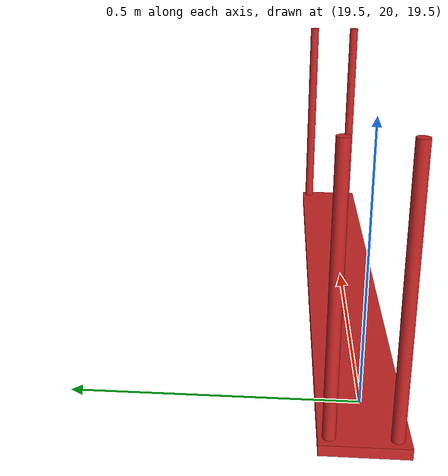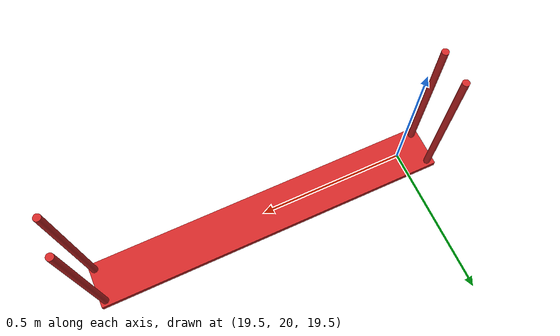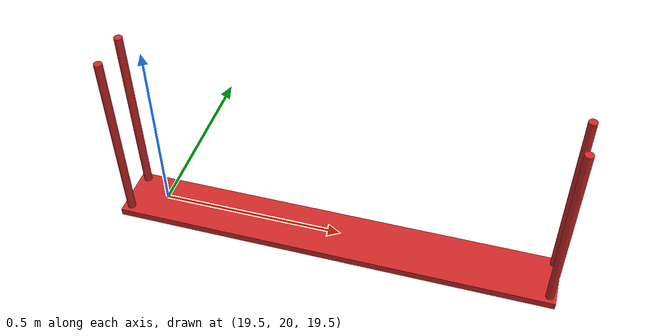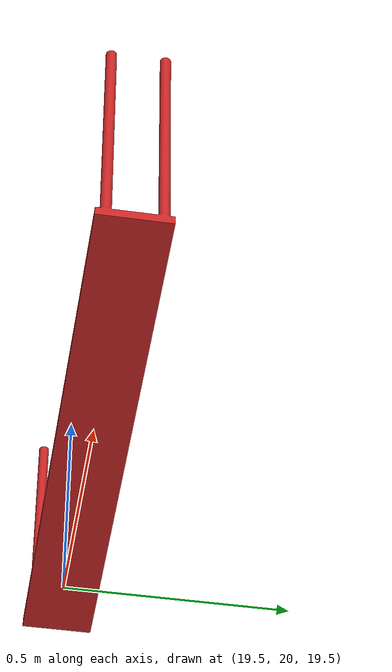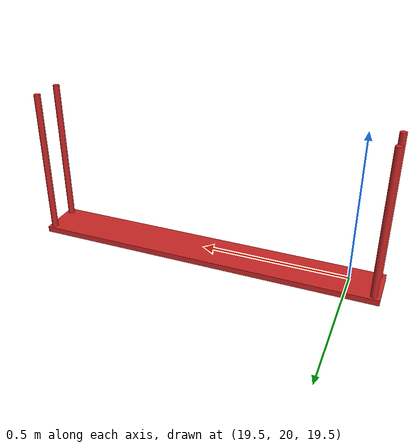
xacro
<?xml version="1.0"?>
<robot name = "world_hi"
 	    xmlns:xi="http://www.w3.org/2001/XInclude"
  		xmlns:gazebo="http://playerstage.sourceforge.net/gazebo/xmlschema/#gz"
  		xmlns:model="http://playerstage.sourceforge.net/gazebo/xmlschema/#model"
  		xmlns:sensor="http://playerstage.sourceforge.net/gazebo/xmlschema/#sensor"
  		xmlns:window="http://playerstage.sourceforge.net/gazebo/xmlschema/#window"
  		xmlns:param="http://playerstage.sourceforge.net/gazebo/xmlschema/#param"
  		xmlns:body="http://playerstage.sourceforge.net/gazebo/xmlschema/#body"
  		xmlns:geo="http://willowgarage.com/xmlschema/#geo"
  		xmlns:geom="http://playerstage.sourceforge.net/gazebo/xmlschema/#geom"
  		xmlns:joint="http://playerstage.sourceforge.net/gazebo/xmlschema/#joint"
  		xmlns:interface="http://playerstage.sourceforge.net/gazebo/xmlschema/#interface"
  		xmlns:ui="http://playerstage.sourceforge.net/gazebo/xmlschema/#ui"
  		xmlns:rendering="http://playerstage.sourceforge.net/gazebo/xmlschema/#rendering"
  		xmlns:renderable="http://playerstage.sourceforge.net/gazebo/xmlschema/#renderable"
  		xmlns:controller="http://playerstage.sourceforge.net/gazebo/xmlschema/#controller"
  		xmlns:physics="http://playerstage.sourceforge.net/gazebo/xmlschema/#physics"
       	xmlns:xacro="http://www.ros.org/wiki/xacro">

  <include filename="$(find auv_visulaization)/urdf/Scenes/marker.urdf.xacro"/>
  <link name="world"/>
  <xacro:marker position = "gate" parent = "world">
    <origin xyz="20 20 20" rpy="0 3.14 0.0" />
  </xacro:marker>
  <gazebo>
    <static>true</static>
  </gazebo>
</robot>

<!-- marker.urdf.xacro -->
<robot 	xmlns:xi="http://www.w3.org/2001/XInclude"
  		xmlns:gazebo="http://playerstage.sourceforge.net/gazebo/xmlschema/#gz"
  		xmlns:model="http://playerstage.sourceforge.net/gazebo/xmlschema/#model"
  		xmlns:sensor="http://playerstage.sourceforge.net/gazebo/xmlschema/#sensor"
  		xmlns:window="http://playerstage.sourceforge.net/gazebo/xmlschema/#window"
  		xmlns:param="http://playerstage.sourceforge.net/gazebo/xmlschema/#param"
  		xmlns:body="http://playerstage.sourceforge.net/gazebo/xmlschema/#body"
  		xmlns:geo="http://willowgarage.com/xmlschema/#geo"
  		xmlns:geom="http://playerstage.sourceforge.net/gazebo/xmlschema/#geom"
  		xmlns:joint="http://playerstage.sourceforge.net/gazebo/xmlschema/#joint"
  		xmlns:interface="http://playerstage.sourceforge.net/gazebo/xmlschema/#interface"
  		xmlns:ui="http://playerstage.sourceforge.net/gazebo/xmlschema/#ui"
  		xmlns:rendering="http://playerstage.sourceforge.net/gazebo/xmlschema/#rendering"
  		xmlns:renderable="http://playerstage.sourceforge.net/gazebo/xmlschema/#renderable"
  		xmlns:controller="http://playerstage.sourceforge.net/gazebo/xmlschema/#controller"
  		xmlns:physics="http://playerstage.sourceforge.net/gazebo/xmlschema/#physics"
       	xmlns:xacro="http://www.ros.org/wiki/xacro">

	<xacro:macro name="marker" params="parent position *origin">
	  <link name="${position}_marker">
        <inertial>
          <origin xyz="0 0 0" rpy="0 0 0" />
          <mass value="0.3" />
          <inertia  ixx="1" ixy="0.0"  ixz="0.0"  iyy="1"  iyz="0.0"	izz="1" />
        </inertial>
        <visual>
  		  <geometry>
		    <mesh filename='$(find auv_visulaization)/../kraken/objects/marker.stl' scale='1.000000 1.000000 1.000000'/>
  		  </geometry>
  		  <origin rpy="0 0 0" xyz="0 0 0"/>
  	    </visual>
        <collision>
          <geometry>
		    <mesh filename='$(find auv_visulaization)/../kraken/objects/marker.stl' scale='1.000000 1.000000 1.000000'/>
  		  </geometry>
  		  <origin rpy="0 0 0" xyz="0 0 0"/>
        </collision>
      </link>
      <joint name="${position}_marker_to_${parent}" type="fixed">
        <parent link="${parent}"/>
        <child link="${position}_marker"/>
        <insert_block name="origin" />
      </joint>
      <gazebo reference="${position}_marker">
        <turnGravityOff>true</turnGravityOff>
        <material>Gazebo/Red</material>
      </gazebo>
    </xacro:macro>
</robot>
